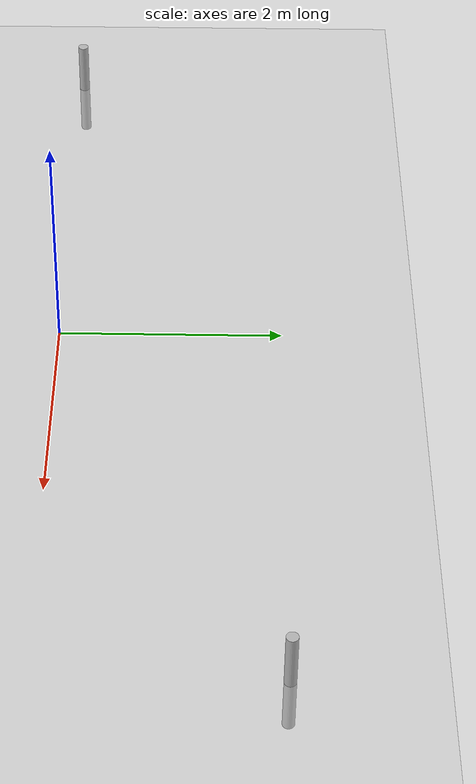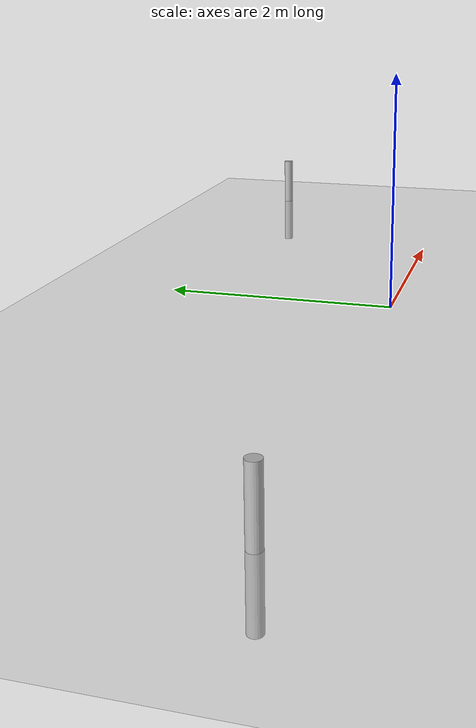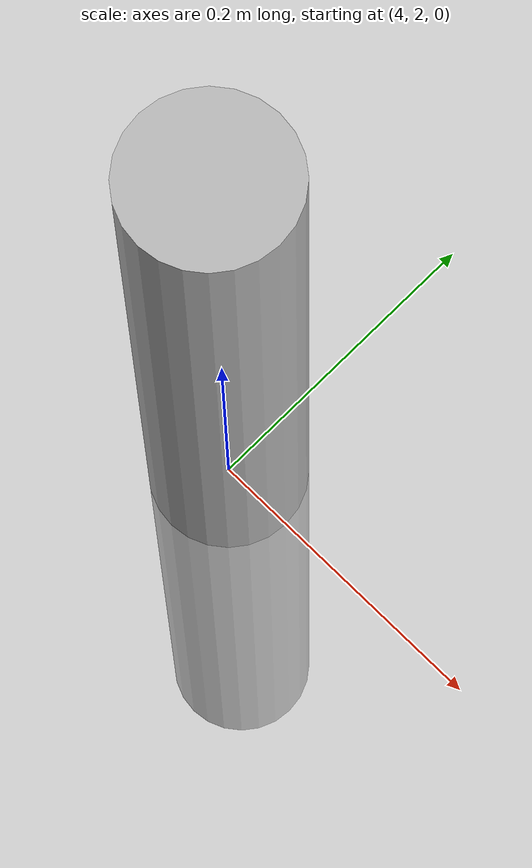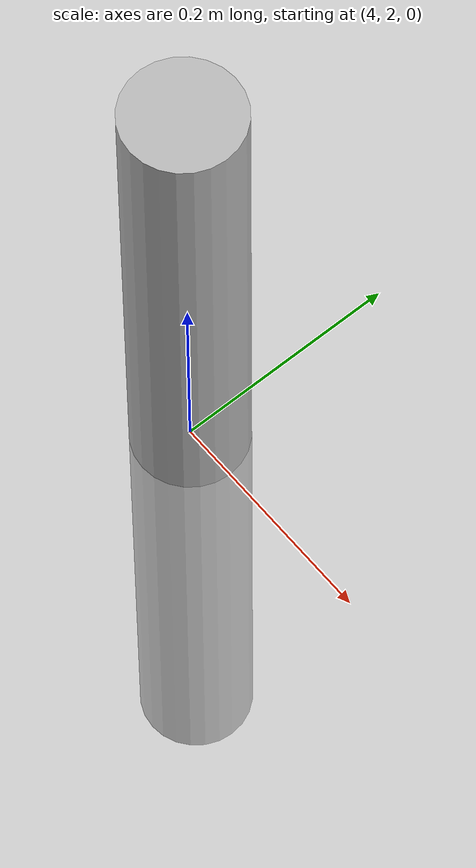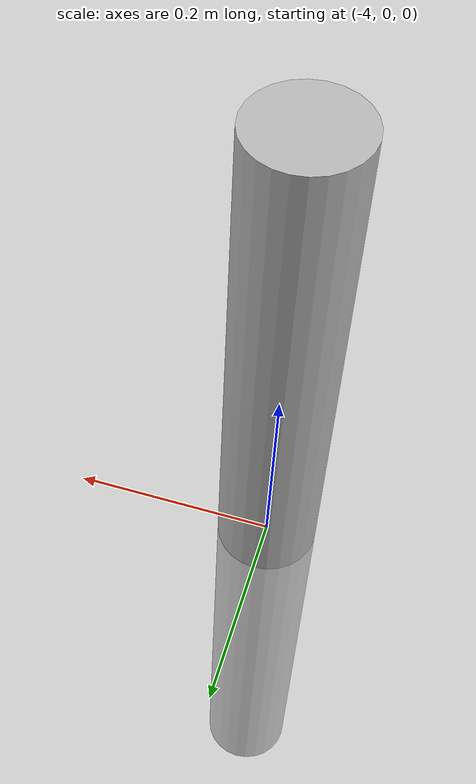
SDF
<?xml version="1.0" ?>
<sdf version="1.6">
  <world name="default">
    <!-- A global light source -->
    <include>
      <uri>model://sun</uri>
    </include>
    <!-- A ground plane -->
    <include>
      <uri>model://ground_plane</uri>
    </include>

        <!-- Usage: Modify the set of models that the vector field should
             ignore when moving the actor -->

    <physics type='ode'>
      <max_step_size>0.001</max_step_size>
      <real_time_factor>.5</real_time_factor>
     <real_time_update_rate>500</real_time_update_rate>
     <gravity>0 0 -9.8</gravity>
    </physics>

    <model name="box">
      <pose>-4 0 0 0 0 0</pose>
      <link name="vis">
        <inertial>
          <mass>10</mass>
        </inertial>
        <collision name="collision">
          <geometry>
            <cylinder>
              <radius>0.05</radius>
              <length>1</length>
            </cylinder>
          </geometry>
          <surface>
            <friction>
              <ode>
                <mu>0</mu>
                <mu2>0</mu2>
              </ode>
            </friction>
          </surface>
        </collision>
        <visual name="visual">
            <geometry>
            <cylinder>
              <radius>0.05</radius>
              <length>1</length>
            </cylinder>
          </geometry>
        </visual>
      </link>
    </model>

    <model name="box2">
      <pose>4 2 0 0 0 0</pose>
      <link name="vis">
        <inertial>
          <mass>10</mass>
        </inertial>
        <collision name="collision">
          <geometry>
            <cylinder>
              <radius>0.05</radius>
              <length>1</length>
            </cylinder>
          </geometry>
          <surface>
            <friction>
              <ode>
                <mu>0</mu>
                <mu2>0</mu2>
              </ode>
            </friction>
          </surface>
        </collision>
        <visual name="visual">
          <geometry>
            <cylinder>
              <radius>0.05</radius>
              <length>1</length>
            </cylinder>
          </geometry>
        </visual>
      </link>
    </model>

    <plugin name="my_plugin" filename="libActors.so">
      <speed>1.6</speed>
      <begin>12</begin>
      <camera>false</camera>
    </plugin>

    <plugin name="laser_plugin" filename="libLaserScanner.so">
    </plugin>

  </world>
</sdf>
